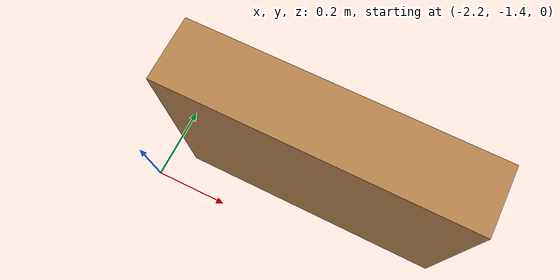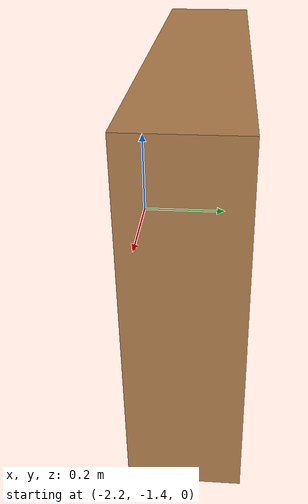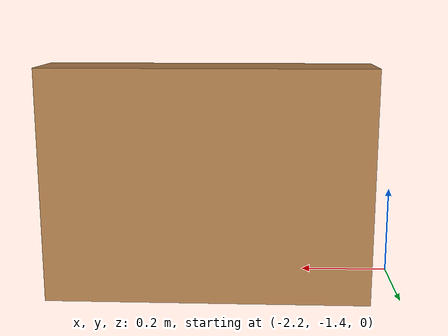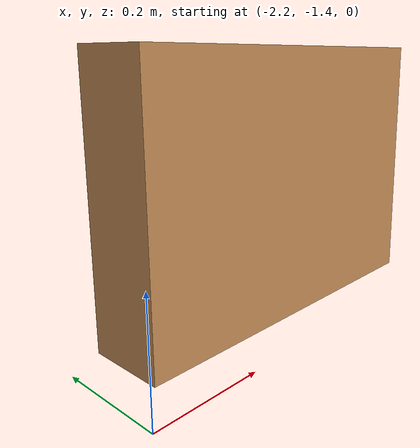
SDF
<?xml version='1.0'?>
<sdf version='1.7'>
  <model name='wall_2m'>
    <pose>-1.7825 -1.2425 0 0 -0 0</pose>
    <link name='Wall_0'>
      <collision name='Wall_0_Collision'>
        <geometry>
          <box>
            <size>0.7 0.15 0.5</size>
          </box>
        </geometry>
        <pose>0 0 0.25 0 -0 0</pose>
      </collision>
      <visual name='Wall_0_Visual'>
        <pose>0 0 0.25 0 -0 0</pose>
        <geometry>
          <box>
            <size>0.7 0.15 0.5</size>
          </box>
        </geometry>
        <material>
          <script>
            <uri>file://media/materials/scripts/gazebo.material</uri>
            <name>Gazebo/Wood</name>
          </script>
          <ambient>1 1 1 1</ambient>
        </material>
        <meta>
          <layer>0</layer>
        </meta>
      </visual>
      <pose>-0.0 -0.0 0 0 -0 0</pose>
    </link>
    <static>1</static>
  </model>
</sdf>
